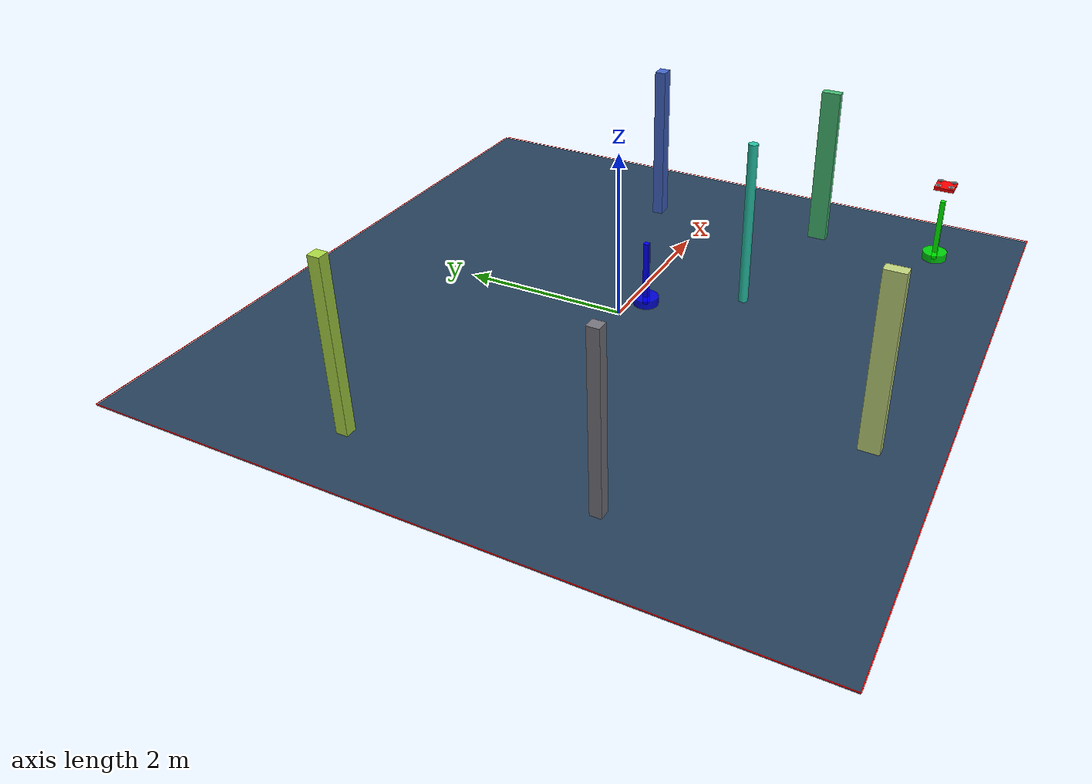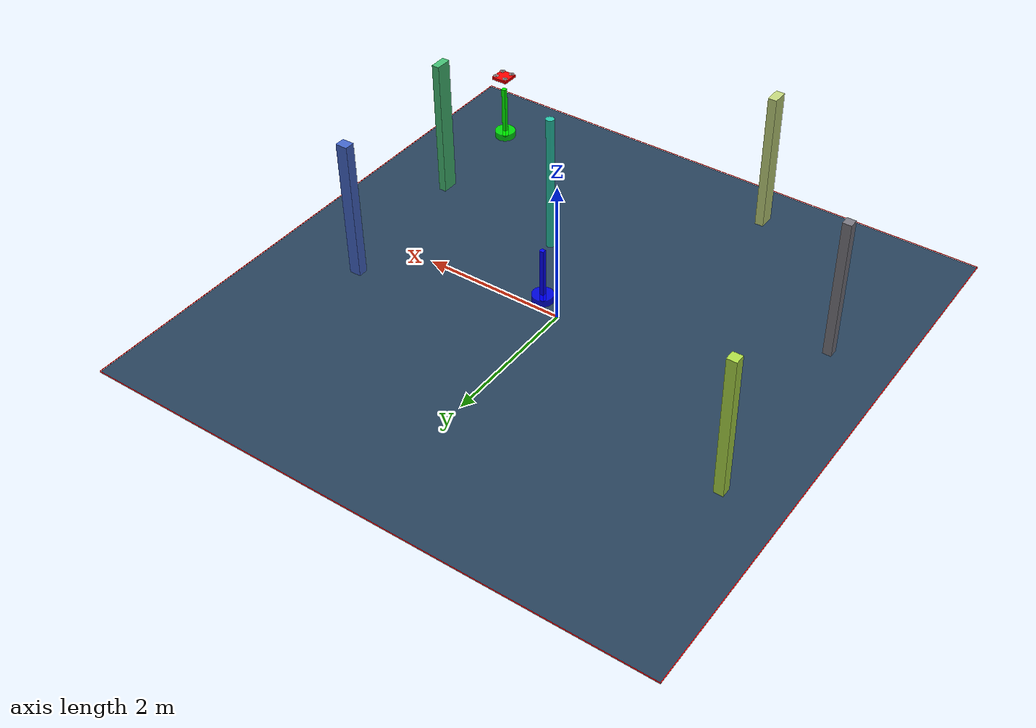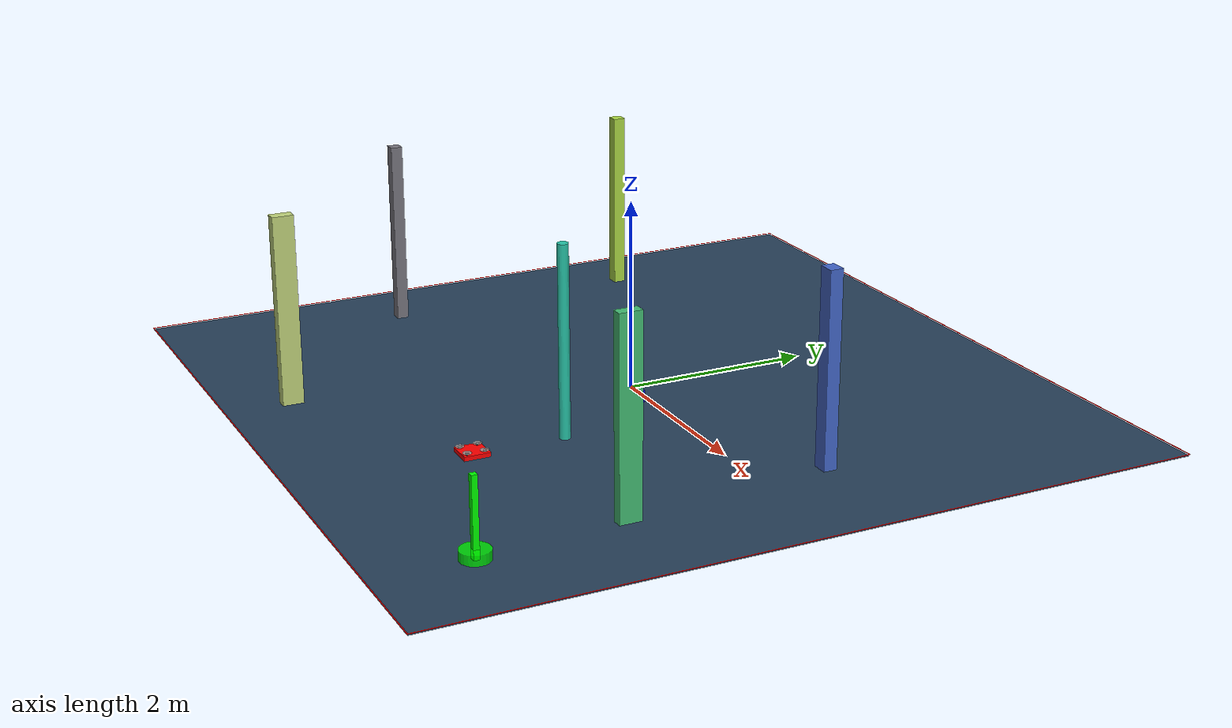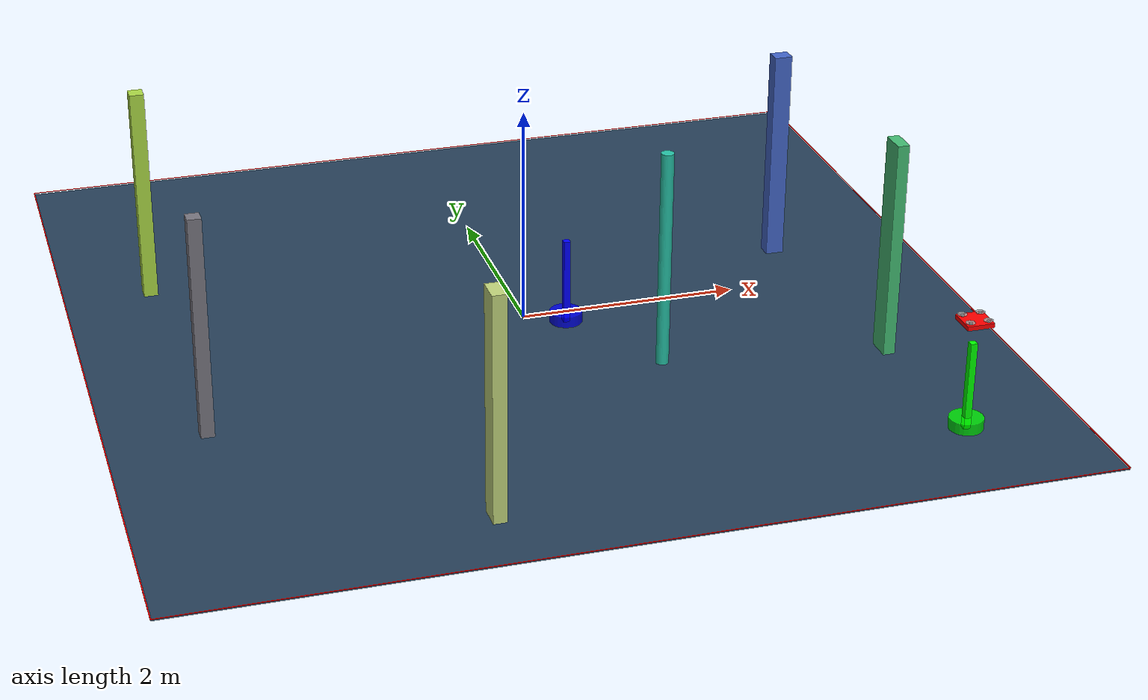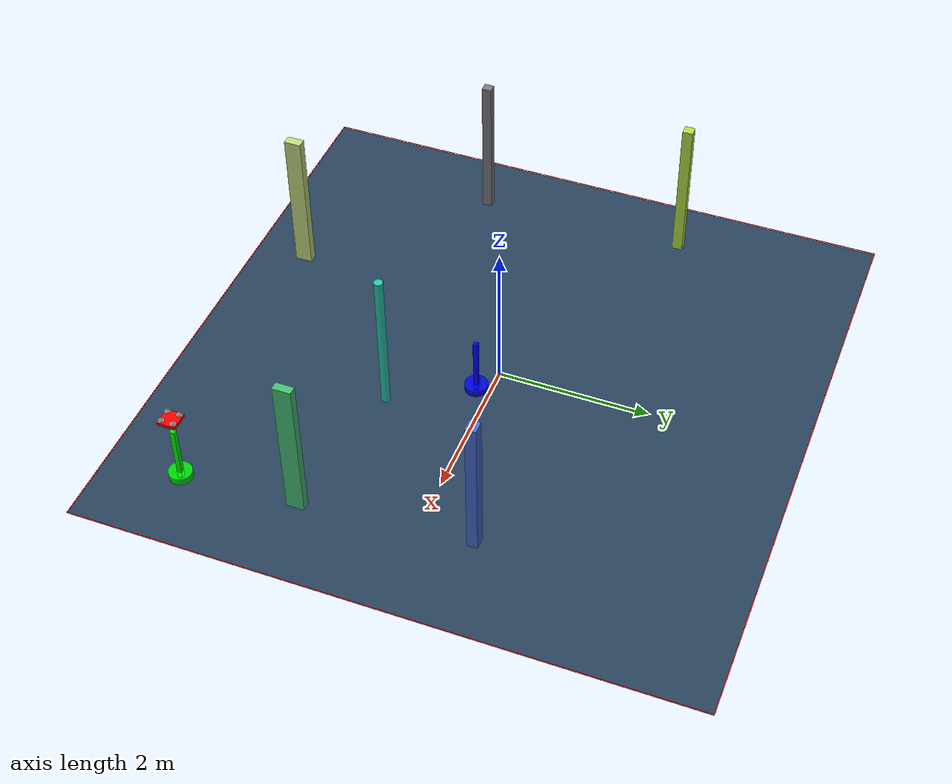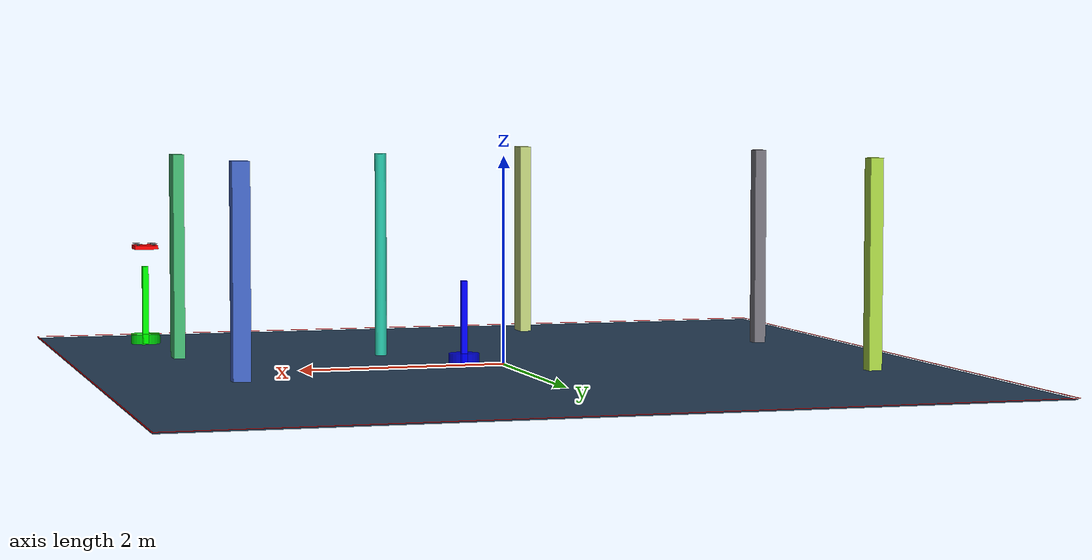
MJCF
<?xml version='1.0' encoding='utf-8'?>
<mujoco model="complex_uav_env">
  <compiler angle="degree" coordinate="local" inertiafromgeom="true" />
  <option integrator="RK4" timestep="0.01" />

  <visual>
    <headlight diffuse="0.6 0.6 0.6" ambient="0.3 0.3 0.3" />
    <rgba haze="0.15 0.25 0.35 1" />
    <global offwidth="2560" offheight="1440" />
  </visual>

  <asset>
    <texture type="skybox" builtin="gradient" rgb1="0.3 0.5 0.7" rgb2="0 0 0" width="512" height="3072" />
    <texture name="grid" type="2d" builtin="checker" rgb1="0.1 0.2 0.3" rgb2="0.2 0.3 0.4" width="512" height="512" />
    <material name="grid" texture="grid" texrepeat="1 1" />
  </asset>

  <worldbody>

    <geom name="ground" type="plane" size="4.0 4.0 0.1" material="grid" />
    <light name="light1" pos="0 0 4" dir="0 0 -1" diffuse="1 1 1" />

    <geom name="start_marker" type="cylinder" size="0.15 0.05" pos="3.0 -3.0 0.05" rgba="0 1 0 0.8" />
    <geom name="start_pole" type="box" size="0.03 0.03 0.4" pos="3.0 -3.0 0.4" rgba="0 1 0 1" />

    <geom name="goal_marker" type="cylinder" size="0.15 0.05" pos="0.347765623215889 -0.1856256851618605 0.05" rgba="0 0 1 0.8" />
    <geom name="goal_pole" type="box" size="0.03 0.03 0.4" pos="0.347765623215889 -0.1856256851618605 0.4" rgba="0 0 1 1" />

    <body name="chassis" pos="3.0 -3.0 1.0">
      <joint type="free" name="root" />
      <geom type="box" size="0.12 0.12 0.02" rgba="1.0 0.0 0.0 1.0" mass="0.8" />

      <geom type="box" size="0.08 0.01 0.005" pos="0 0 0.01" rgba="0.3 0.3 0.3 1" />
      <geom type="box" size="0.01 0.08 0.005" pos="0 0 0.01" rgba="0.3 0.3 0.3 1" />

      <geom type="cylinder" size="0.015 0.02" pos="0.08 0.08 0.015" rgba="0.2 0.2 0.2 1" />
      <geom type="cylinder" size="0.015 0.02" pos="-0.08 0.08 0.015" rgba="0.2 0.2 0.2 1" />
      <geom type="cylinder" size="0.015 0.02" pos="0.08 -0.08 0.015" rgba="0.2 0.2 0.2 1" />
      <geom type="cylinder" size="0.015 0.02" pos="-0.08 -0.08 0.015" rgba="0.2 0.2 0.2 1" />

      <geom type="cylinder" size="0.04 0.002" pos="0.08 0.08 0.035" rgba="0.7 0.7 0.7 0.8" />
      <geom type="cylinder" size="0.04 0.002" pos="-0.08 0.08 0.035" rgba="0.7 0.7 0.7 0.8" />
      <geom type="cylinder" size="0.04 0.002" pos="0.08 -0.08 0.035" rgba="0.7 0.7 0.7 0.8" />
      <geom type="cylinder" size="0.04 0.002" pos="-0.08 -0.08 0.035" rgba="0.7 0.7 0.7 0.8" />

      <site name="motor1" pos="0.08 0.08 0" size="0.01" />
      <site name="motor2" pos="-0.08 0.08 0" size="0.01" />
      <site name="motor3" pos="0.08 -0.08 0" size="0.01" />
      <site name="motor4" pos="-0.08 -0.08 0" size="0.01" />
    </body>
    <geom name="test_obs_0" type="box" size="0.06532964363744084 0.068230872927313 1.0" pos="-3.205948598909207 1.4199259690774115 1.0" rgba="0.6757038645353687 0.8526512352697342 0.27041402082912414 1.0" />
    <geom name="test_obs_1" type="box" size="0.0605546214539956 0.11156160565461105 1.0" pos="-1.1628140509523535 -3.2967604253734493 1.0" rgba="0.7578495436750979 0.8344079842678283 0.4863770884860573 1.0" />
    <geom name="test_obs_2" type="box" size="0.05385430544175323 0.11651692120164626 1.0" pos="2.90912451224069 -1.4873983435979912 1.0" rgba="0.2643193429032912 0.7369575502103699 0.44981909603189874 1.0" />
    <geom name="test_obs_3" type="box" size="0.0832644401111309 0.06868286578999533 1.0" pos="2.6903464011983593 0.7074811841278853 1.0" rgba="0.2625545465634989 0.4018501604817486 0.7903223229356467 1.0" />
    <geom name="test_obs_4" type="cylinder" size="0.0570146724668786 1.0" pos="0.9282404163967218 -1.1924255980408254 1.0" rgba="0.14838598979414508 0.7685106763508948 0.6574937083215187 1.0" />
    <geom name="test_obs_5" type="box" size="0.05995700822940032 0.0634951504895732 1.0" pos="-3.1415280441772957 -1.365419946922028 1.0" rgba="0.46943691338581617 0.46251386251411286 0.4972098486798815 1.0" />
  <geom name="boundary_north" type="box" size="4.0 0.005 0.002" pos="0 4.0 0.002" rgba="1.0 0.0 0.0 1.0" /><geom name="boundary_south" type="box" size="4.0 0.005 0.002" pos="0 -4.0 0.002" rgba="1.0 0.0 0.0 1.0" /><geom name="boundary_east" type="box" size="0.005 4.0 0.002" pos="4.0 0 0.002" rgba="1.0 0.0 0.0 1.0" /><geom name="boundary_west" type="box" size="0.005 4.0 0.002" pos="-4.0 0 0.002" rgba="1.0 0.0 0.0 1.0" /></worldbody>

  <actuator>
    <motor name="m1" gear="0 0 1 0 0 0" site="motor1" />
    <motor name="m2" gear="0 0 1 0 0 0" site="motor2" />
    <motor name="m3" gear="0 0 1 0 0 0" site="motor3" />
    <motor name="m4" gear="0 0 1 0 0 0" site="motor4" />
  </actuator>
</mujoco>
